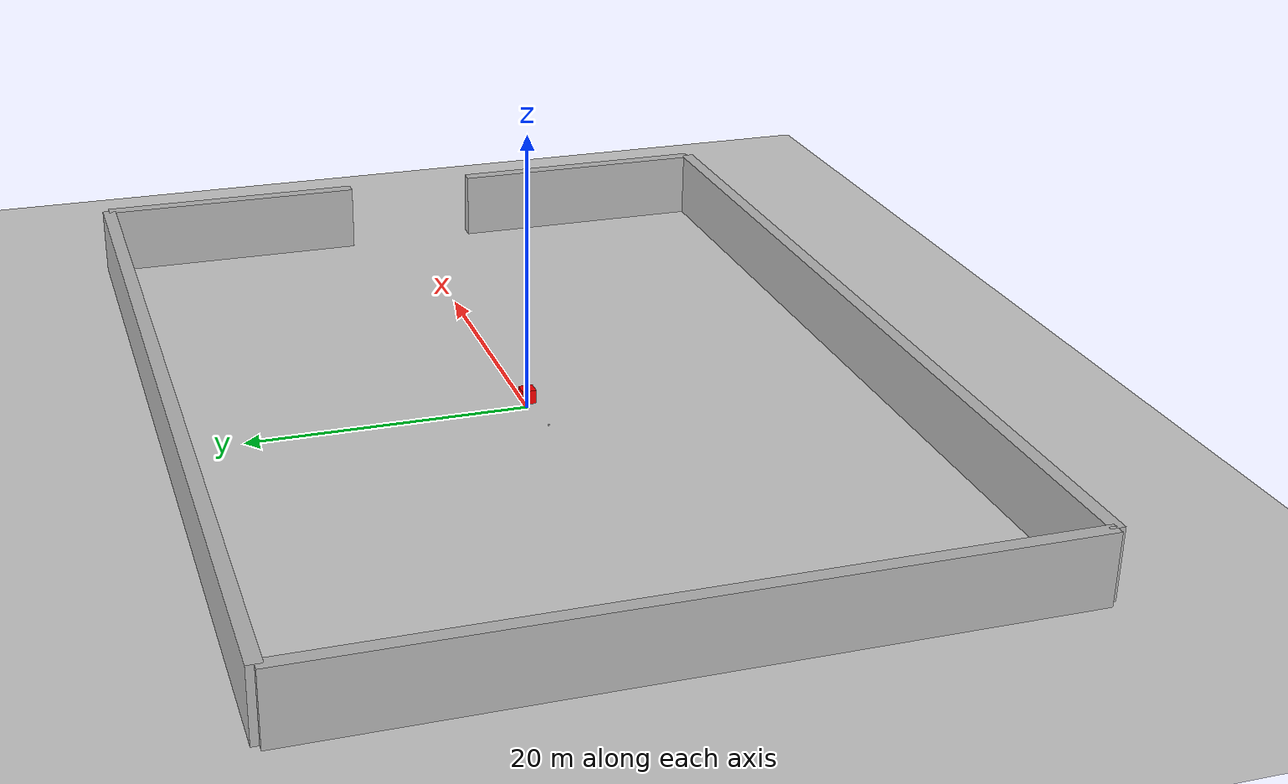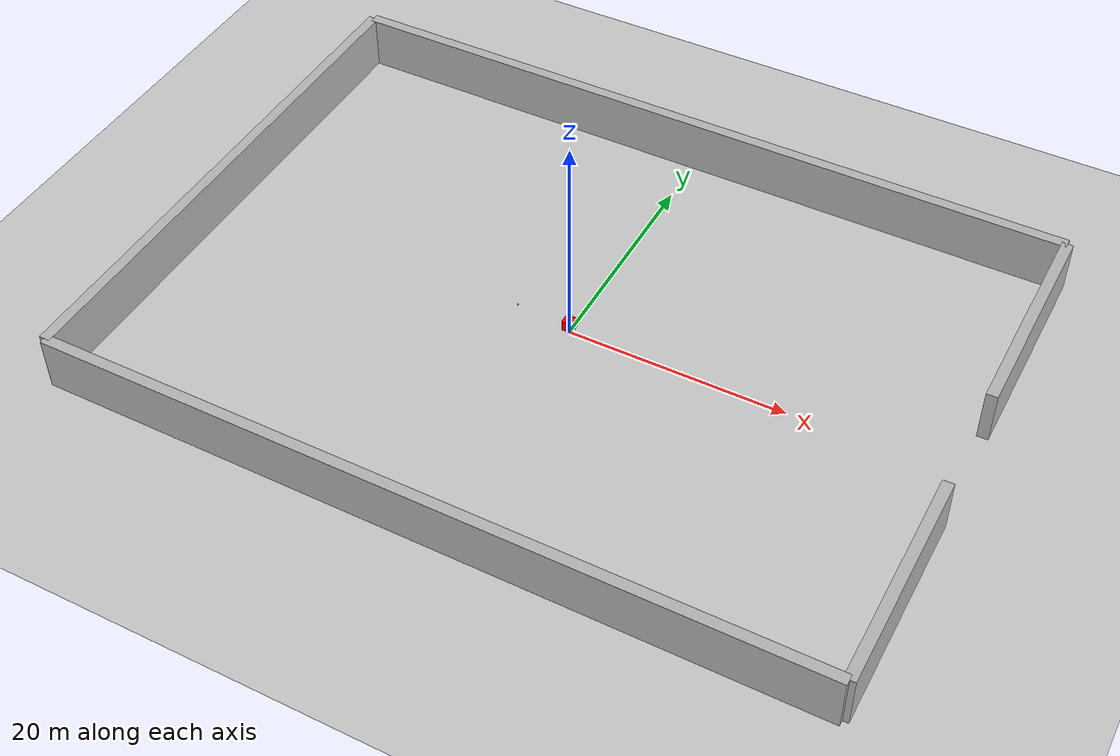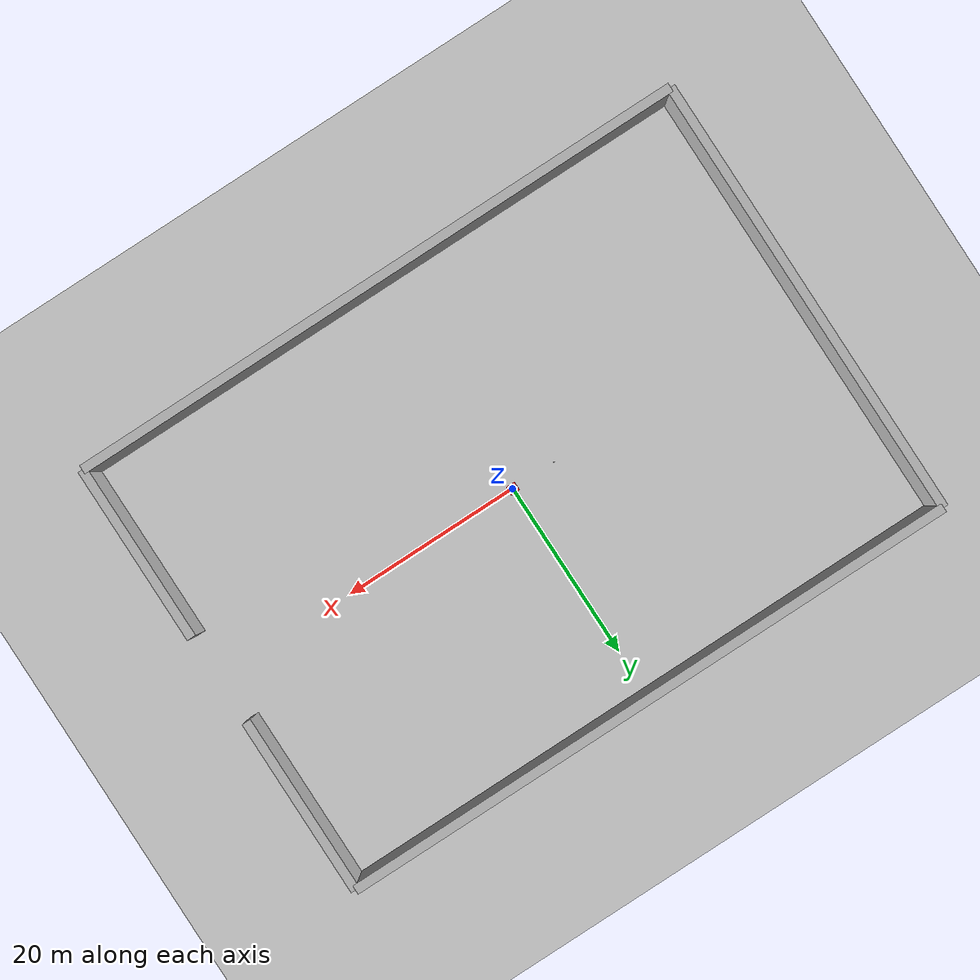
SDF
<sdf version="1.6">
 <world name="simple_warehouse">
  <physics name="1ms" type="ode">
   <max_step_size>0.001</max_step_size>
   <real_time_factor>1.0</real_time_factor>
  </physics>
  <plugin filename="libignition-gazebo-imu-system.so" name="ignition::gazebo::systems::Imu"/>
  <plugin filename="libignition-gazebo-sensors-system.so" name="ignition::gazebo::systems::Sensors">
   <render_engine>ogre2</render_engine>
  </plugin>
  <plugin filename="libignition-gazebo-physics-system.so" name="ignition::gazebo::systems::Physics"/>
  <plugin filename="libignition-gazebo-user-commands-system.so" name="ignition::gazebo::systems::UserCommands"/>
  <plugin filename="libignition-gazebo-scene-broadcaster-system.so" name="ignition::gazebo::systems::SceneBroadcaster"/>
  <plugin filename="WorldControl" name="World control">
   <ignition-gui>
    <title>World control</title>
    <property type="bool" key="showTitleBar">false</property>
    <property type="bool" key="resizable">false</property>
    <property type="double" key="height">72</property>
    <property type="double" key="width">121</property>
    <property type="double" key="z">1</property>
    <property type="string" key="state">floating</property>
    <anchors target="3D View"><line own="left" target="left"/><line own="bottom" target="bottom"/></anchors>
   </ignition-gui>
   <play_pause>true</play_pause>
   <step>true</step>
   <start_paused>true</start_paused>
   <service>/world/world_demo/control</service>
   <stats_topic>/world/world_demo/stats</stats_topic>
  </plugin>
  <plugin filename="GzScene3D" name="3D View">
   <ignition-gui>
    <title>3D View</title>
    <property type="bool" key="showTitleBar">false</property>
    <property type="string" key="state">docked</property>
   </ignition-gui>
   <engine>ogre2</engine>
   <scene>scene</scene>
   <ambient_light>1.0 1.0 1.0</ambient_light>
   <background_color>0.8 0.8 0.8</background_color>
   <camera_pose>-6 0 6 0 0.5 0</camera_pose>
  </plugin>
  <atmosphere type="adiabatic">
   <temperature>300</temperature>
   <temperature_gradient>0.1</temperature_gradient>
  </atmosphere>
  <light type="directional" name="sun">
   <pose>0 0 10 0 0 0</pose>
   <diffuse>1 1 1 1</diffuse>
   <specular>0.5 0.5 0.5 1</specular>
   <attenuation>
    <range>1000</range>
    <constant>0.9</constant>
    <linear>0.01</linear>
    <quadratic>0.001</quadratic>
   </attenuation>
   <direction>-0.5 0.1 -0.9</direction>
  </light>
  <model name="ground_plane">
   <static>true</static>
   <link name="link">
    <collision name="collision"><geometry><plane><normal>0 0 1</normal></plane></geometry></collision>
    <visual name="visual">
     <geometry><plane><normal>0 0 1</normal><size>100 100</size></plane></geometry>
     <material>
      <ambient>0.8 0.8 0.8 1</ambient>
      <diffuse>0.8 0.8 0.8 1</diffuse>
      <specular>0.8 0.8 0.8 1</specular>
     </material>
    </visual>
   </link>
  </model>
  <include><uri>model://fog_generator</uri></include>
  <include><uri>model://fire_generator</uri><pose>0 0 1 0 0 0</pose></include>
  <include><uri>model://sensors</uri><pose>-5 0 1 0 0 0</pose></include>
  <model name="wall_1">
   <static>1</static>
   <link name="link">
    <collision name="collision"><geometry><box><size>70 1 5</size></box></geometry></collision>
    <visual name="visual"><geometry><box><size>70 1 5</size></box></geometry></visual>
   </link>
   <pose>0 25 2.5 0 0 0</pose>
  </model>
  <model name="wall_2">
   <static>1</static>
   <link name="link">
    <collision name="collision"><geometry><box><size>70 1 5</size></box></geometry></collision>
    <visual name="visual"><geometry><box><size>70 1 5</size></box></geometry></visual>
   </link>
   <pose>0 -25 2.5 0 0 0</pose>
  </model>
  <model name="wall_3">
   <static>1</static>
   <link name="link">
    <collision name="collision"><geometry><box><size>1 20 5</size></box></geometry></collision>
    <visual name="visual"><geometry><box><size>1 20 5</size></box></geometry></visual>
   </link>
   <pose>35 -15 2.5 0 0 0</pose>
  </model>
  <model name="wall_4">
   <static>1</static>
   <link name="link">
    <collision name="collision"><geometry><box><size>1 50 5</size></box></geometry></collision>
    <visual name="visual"><geometry><box><size>1 50 5</size></box></geometry></visual>
   </link>
   <pose>-35 0 2.5 0 0 0</pose>
  </model>
  <model name="wall_5">
   <static>1</static>
   <link name="link">
    <collision name="collision"><geometry><box><size>1 20 5</size></box></geometry></collision>
    <visual name="visual"><geometry><box><size>1 20 5</size></box></geometry></visual>
   </link>
   <pose>35 15 2.5 0 0 0</pose>
  </model>
 </world>
</sdf>

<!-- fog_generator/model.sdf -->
<sdf version="1.6">
  <model name="fog_generator">
    <pose>0 0 2 0 -1.5707 0</pose>
    <static>true</static>
    <link name="fog_link">
      <particle_emitter name="emitter" type="box">
        <emitting>true</emitting>
        <size>6 6 0</size>
        <particle_size>1 1 1</particle_size>
        <lifetime>20</lifetime>
        <min_velocity>0.1</min_velocity>
        <max_velocity>0.5</max_velocity>
        <scale_rate>1</scale_rate>
        <rate>5</rate>
        <material>
          <diffuse>0.5 0.5 0.5</diffuse>
          <specular>1.0 1.0 1.0</specular>
          <pbr>
            <metal>
              <albedo_map>materials/textures/fog.png</albedo_map>
            </metal>
          </pbr>
        </material>
        <color_range_image>materials/textures/fogcolors.png</color_range_image>
      </particle_emitter>
    </link>
        <plugin
      filename="libignition-gazebo-particle-emitter-system.so"
      name="ignition::gazebo::systems::ParticleEmitter">
    </plugin>
  </model>
</sdf>

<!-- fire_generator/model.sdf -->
<sdf version="1.6">
  <model name="fire_generator">
    <pose>0 0 0 0 -1.5707 0</pose>
    <static>true</static>
    <link name="fire_link">
      <particle_emitter name="emitter" type="box">
        <emitting>true</emitting>
        <size>1 1 1 </size>
        <particle_size>0.3 0.3 0.3</particle_size>
        <lifetime>5</lifetime>
        <min_velocity>0.1</min_velocity>
        <max_velocity>0.2</max_velocity>
        <scale_rate>0.5</scale_rate>
        <rate>50</rate>
        <material>
          <diffuse>0.7 0.7 0.7</diffuse>
          <specular>1.0 1.0 1.0</specular>
          <pbr>
            <metal>
              <albedo_map>materials/textures/fire.png</albedo_map>
            </metal>
          </pbr>
        </material>
        <color_range_image>materials/textures/firecolors.png</color_range_image>
      </particle_emitter>
    </link>
    <link name="thermal_link">
    <visual name="fire_visual">
      <geometry>
        <box>
          <size>1 1 1 </size>
        </box>
      </geometry>
      <material>
        <ambient>1 0 0 1</ambient>
        <diffuse>1 0 0 1</diffuse>
        <specular>1 0 0 1</specular>
      </material>
      <plugin filename="ignition-gazebo-thermal-system" name="ignition::gazebo::systems::Thermal">
          <heat_signature>materials/textures/fire_thermal.png</heat_signature>
          <max_temp>1200</max_temp>
        </plugin>
    </visual>
  </link>
    <plugin
      filename="libignition-gazebo-particle-emitter-system.so"
      name="ignition::gazebo::systems::ParticleEmitter">
    </plugin>

  </model>
</sdf>

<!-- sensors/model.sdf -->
<sdf version="1.6">
  <model name='sensors'>
      <pose>0 0 0 0 0 0</pose> <!-- Combined position -->
      <link name='link'>
        <pose>0 0 0 0 0 0</pose>
        <inertial>
          <mass>0.10000000000000001</mass>
          <inertia>
            <ixx>0.00016666700000000001</ixx>
            <iyy>0.00016666700000000001</iyy>
            <izz>0.00016666700000000001</izz>
            <ixy>0</ixy>
            <ixz>0</ixz>
            <iyz>0</iyz>
          </inertia>
        </inertial>
        <collision name='collision'>
          <geometry>
            <box>
              <size>0.1 0.1 0.1</size>
            </box>
          </geometry>
          <surface>
            <friction>
              <ode/>
            </friction>
            <bounce/>
            <contact/>
          </surface>
        </collision>
        <visual name='visual'>
          <geometry>
            <box>
              <size>0.1 0.1 0.1</size>
            </box>
          </geometry>
        </visual>
        <sensor name='camera' type='camera'>
          <camera>
            <horizontal_fov>1.0469999999999999</horizontal_fov>
            <image>
              <width>320</width>
              <height>240</height>
            </image>
            <clip>
              <near>0.10000000000000001</near>
              <far>100</far>
            </clip>
          </camera>
          <always_on>1</always_on>
          <update_rate>30</update_rate>
          <visualize>1</visualize>
          <topic>camera/image</topic>
        </sensor>
            <sensor name="thermal_camera_8bit" type="thermal">
  <camera>
    <horizontal_fov>1.047</horizontal_fov>
    <image>
      <width>320</width>
      <height>240</height>
      <format>L8</format>
    </image>
    <clip>
      <near>0.1</near>
      <far>100</far>
    </clip>
  </camera>
  <always_on>1</always_on>
  <update_rate>30</update_rate>
  <visualize>false</visualize>
  <topic>thermal_camera/image</topic>
  <plugin
    filename="ignition-gazebo-thermal-sensor-system"
    name="gz::sim::systems::ThermalSensor">
    <min_temp>253.15</min_temp>
    <max_temp>673.15</max_temp>
    <resolution>3.0</resolution>
  </plugin>
</sensor>
      </link>
      <static>1</static>
    </model>
</sdf>
